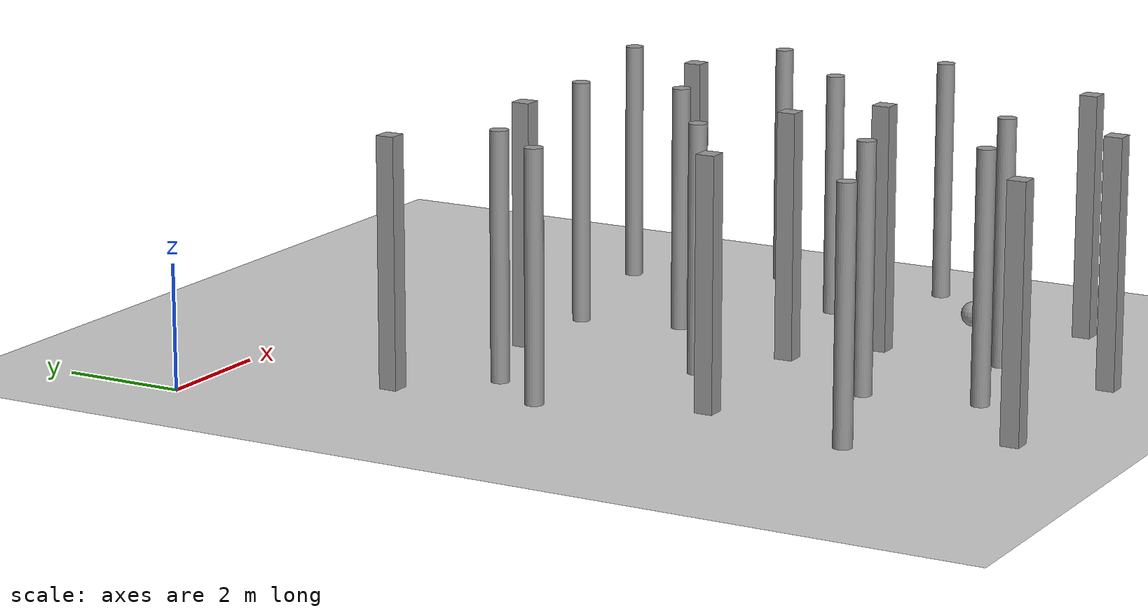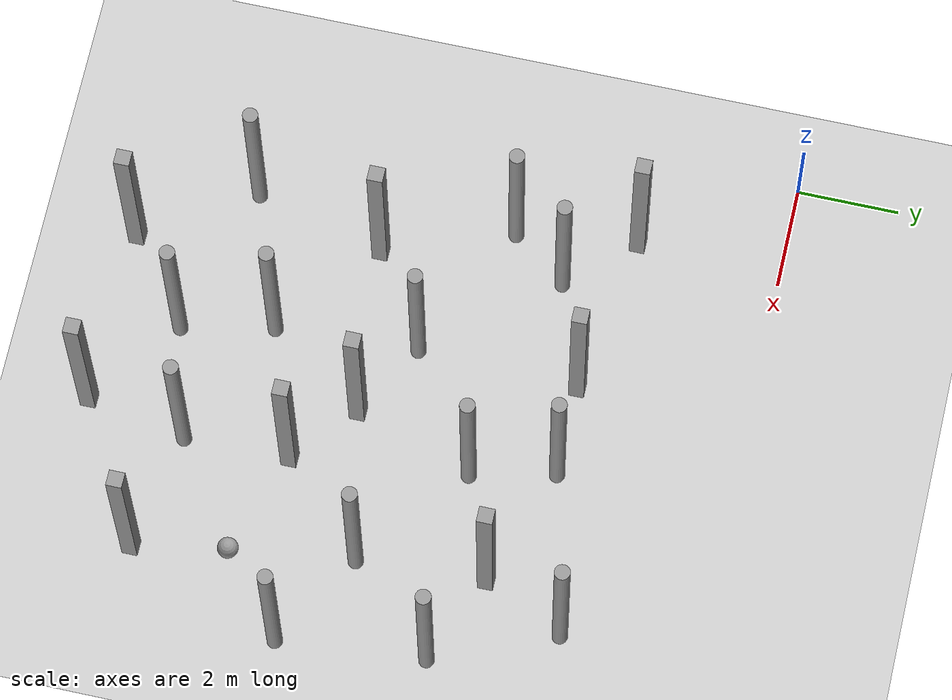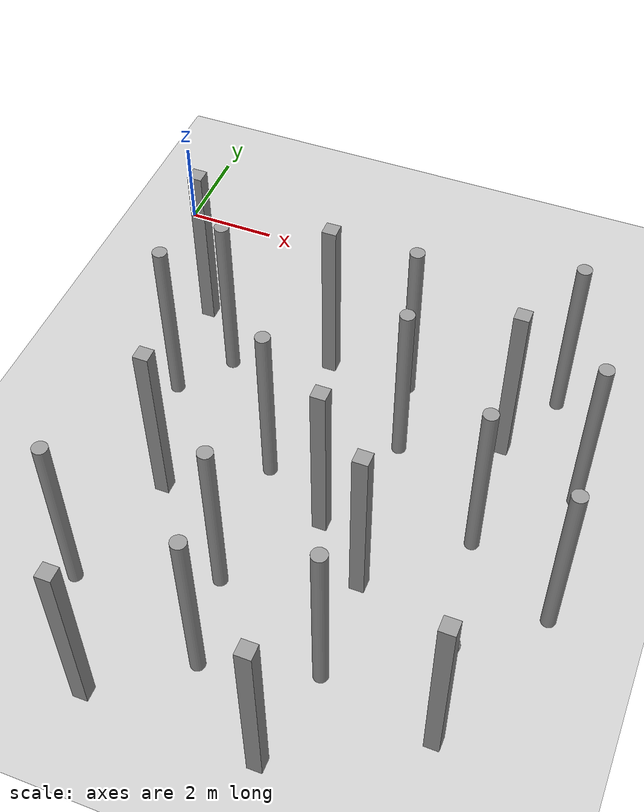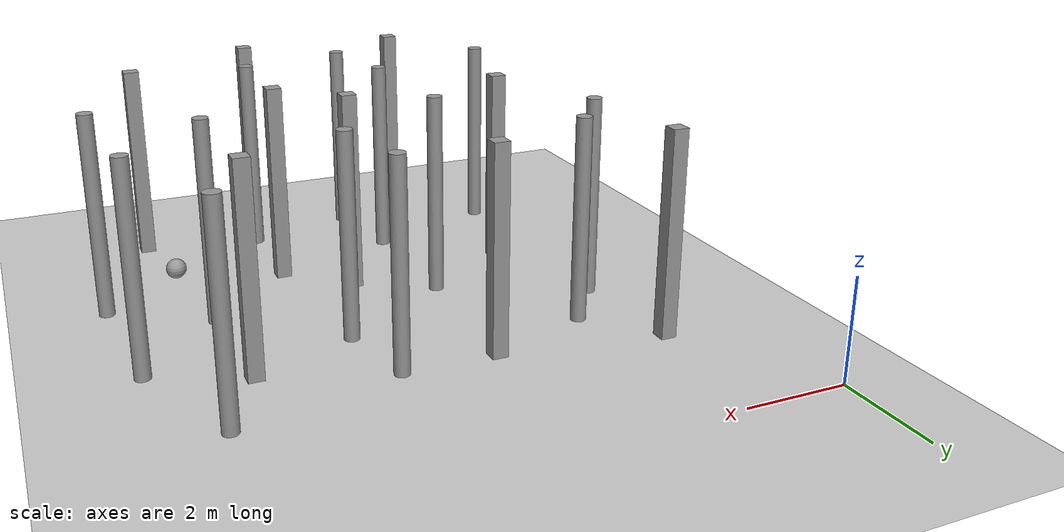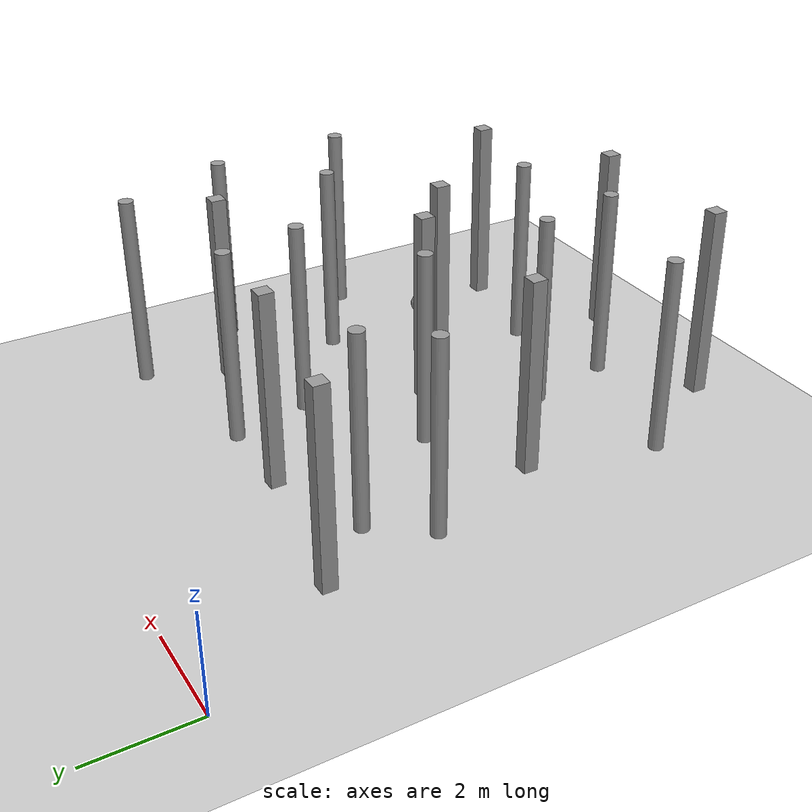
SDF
<sdf version="1.6">
 <world name="default">
  <model name="ground_plane">
   <static>1</static>
   <link name="link">
    <collision name="collision">
     <geometry><plane><normal>0 0 1</normal><size>100 100</size></plane></geometry>
    </collision>
    <visual name="visual">
     <cast_shadows>0</cast_shadows>
     <geometry><plane><normal>0 0 1</normal><size>100 100</size></plane></geometry>
     <material>
      <script><uri>file://media/materials/scripts/gazebo.material</uri><name>Gazebo/Gray</name></script>
     </material>
    </visual>
   </link>
  </model>
  <model name="unit_sphere">
   <link name="link">
    <inertial>
     <mass>1</mass>
     <inertia><ixx>0.1</ixx><ixy>0</ixy><ixz>0</ixz><iyy>0.1</iyy><iyz>0</iyz><izz>0.1</izz></inertia>
    </inertial>
    <gravity>0</gravity>
    <visual name="visual">
     <geometry><sphere><radius>0.203941</radius></sphere></geometry>
     <material>
      <script><name>Gazebo/Grey</name><uri>file://media/materials/scripts/gazebo.material</uri></script>
      <shader type="pixel"><normal_map>__default__</normal_map></shader>
     </material>
    </visual>
    <collision name="collision">
     <geometry><sphere><radius>0.203941</radius></sphere></geometry>
     <surface>
      <friction>
       <ode><mu>1</mu><mu2>1</mu2><fdir1>0 0 0</fdir1><slip1>0</slip1><slip2>0</slip2></ode>
       <torsional>
        <coefficient>1</coefficient>
        <patch_radius>0</patch_radius>
        <surface_radius>0</surface_radius>
        <use_patch_radius>1</use_patch_radius>
        <ode><slip>0</slip></ode>
       </torsional>
      </friction>
      <bounce><restitution_coefficient>0</restitution_coefficient><threshold>1e+06</threshold></bounce>
      <contact>
       <collide_without_contact>0</collide_without_contact>
       <collide_without_contact_bitmask>1</collide_without_contact_bitmask>
       <collide_bitmask>1</collide_bitmask>
       <ode>
        <soft_cfm>0</soft_cfm>
        <soft_erp>0.2</soft_erp>
        <kp>1e+13</kp>
        <kd>1</kd>
        <max_vel>0.01</max_vel>
        <min_depth>0</min_depth>
       </ode>
       <bullet>
        <split_impulse>1</split_impulse>
        <split_impulse_penetration_threshold>-0.01</split_impulse_penetration_threshold>
        <soft_cfm>0</soft_cfm>
        <soft_erp>0.2</soft_erp>
        <kp>1e+13</kp>
        <kd>1</kd>
       </bullet>
      </contact>
     </surface>
    </collision>
   </link>
   <static>0</static>
   <pose>9.54607 -9.14462 0.203941 0 -0 0</pose>
  </model>
  <model name="unit_box_clone_2">
   <link name="link">
    <inertial>
     <mass>1000</mass>
     <inertia><ixx>166.667</ixx><ixy>0</ixy><ixz>0</ixz><iyy>166.667</iyy><iyz>0</iyz><izz>166.667</izz></inertia>
    </inertial>
    <visual name="visual">
     <geometry><box><size>0.3 0.3 4</size></box></geometry>
     <material>
      <script><name>Gazebo/Grey</name><uri>file://media/materials/scripts/gazebo.material</uri></script>
      <shader type="vertex"><normal_map>__default__</normal_map></shader>
      <ambient>0.3 0.3 0.3 1</ambient>
      <diffuse>0.7 0.7 0.7 1</diffuse>
      <specular>0.01 0.01 0.01 1</specular>
      <emissive>0 0 0 1</emissive>
     </material>
    </visual>
    <collision name="collision">
     <geometry><box><size>0.3 0.3 4</size></box></geometry>
     <surface>
      <friction>
       <ode><mu>1</mu><mu2>1</mu2><fdir1>0 0 0</fdir1><slip1>0</slip1><slip2>0</slip2></ode>
       <torsional>
        <coefficient>1</coefficient>
        <patch_radius>0</patch_radius>
        <surface_radius>0</surface_radius>
        <use_patch_radius>1</use_patch_radius>
        <ode><slip>0</slip></ode>
       </torsional>
      </friction>
      <bounce><restitution_coefficient>0</restitution_coefficient><threshold>1e+06</threshold></bounce>
      <contact>
       <collide_without_contact>0</collide_without_contact>
       <collide_without_contact_bitmask>1</collide_without_contact_bitmask>
       <collide_bitmask>1</collide_bitmask>
       <ode>
        <soft_cfm>0</soft_cfm>
        <soft_erp>0.2</soft_erp>
        <kp>1e+13</kp>
        <kd>1</kd>
        <max_vel>0.01</max_vel>
        <min_depth>0</min_depth>
       </ode>
       <bullet>
        <split_impulse>1</split_impulse>
        <split_impulse_penetration_threshold>-0.01</split_impulse_penetration_threshold>
        <soft_cfm>0</soft_cfm>
        <soft_erp>0.2</soft_erp>
        <kp>1e+13</kp>
        <kd>1</kd>
       </bullet>
      </contact>
     </surface>
    </collision>
   </link>
   <static>0</static>
   <pose>4.92523 -3.34791 2 -1e-06 -7e-06 0.005354</pose>
  </model>
  <model name="unit_box_clone_7">
   <link name="link">
    <inertial>
     <mass>1000</mass>
     <inertia><ixx>166.667</ixx><ixy>0</ixy><ixz>0</ixz><iyy>166.667</iyy><iyz>0</iyz><izz>166.667</izz></inertia>
    </inertial>
    <visual name="visual">
     <geometry><box><size>0.3 0.3 4</size></box></geometry>
     <material>
      <script><name>Gazebo/Grey</name><uri>file://media/materials/scripts/gazebo.material</uri></script>
      <shader type="vertex"><normal_map>__default__</normal_map></shader>
      <ambient>0.3 0.3 0.3 1</ambient>
      <diffuse>0.7 0.7 0.7 1</diffuse>
      <specular>0.01 0.01 0.01 1</specular>
      <emissive>0 0 0 1</emissive>
     </material>
    </visual>
    <collision name="collision">
     <geometry><box><size>0.3 0.3 4</size></box></geometry>
     <surface>
      <friction>
       <ode><mu>1</mu><mu2>1</mu2><fdir1>0 0 0</fdir1><slip1>0</slip1><slip2>0</slip2></ode>
       <torsional>
        <coefficient>1</coefficient>
        <patch_radius>0</patch_radius>
        <surface_radius>0</surface_radius>
        <use_patch_radius>1</use_patch_radius>
        <ode><slip>0</slip></ode>
       </torsional>
      </friction>
      <bounce><restitution_coefficient>0</restitution_coefficient><threshold>1e+06</threshold></bounce>
      <contact>
       <collide_without_contact>0</collide_without_contact>
       <collide_without_contact_bitmask>1</collide_without_contact_bitmask>
       <collide_bitmask>1</collide_bitmask>
       <ode>
        <soft_cfm>0</soft_cfm>
        <soft_erp>0.2</soft_erp>
        <kp>1e+13</kp>
        <kd>1</kd>
        <max_vel>0.01</max_vel>
        <min_depth>0</min_depth>
       </ode>
       <bullet>
        <split_impulse>1</split_impulse>
        <split_impulse_penetration_threshold>-0.01</split_impulse_penetration_threshold>
        <soft_cfm>0</soft_cfm>
        <soft_erp>0.2</soft_erp>
        <kp>1e+13</kp>
        <kd>1</kd>
       </bullet>
      </contact>
     </surface>
    </collision>
   </link>
   <static>0</static>
   <pose>9.8605 -10.963 2 5e-06 -1.8e-05 -0.005667</pose>
  </model>
  <model name="unit_cylinder_clone_0">
   <link name="link">
    <inertial>
     <mass>1000</mass>
     <inertia><ixx>145.833</ixx><ixy>0</ixy><ixz>0</ixz><iyy>145.833</iyy><iyz>0</iyz><izz>125</izz></inertia>
    </inertial>
    <visual name="visual">
     <geometry><cylinder><radius>0.15</radius><length>4</length></cylinder></geometry>
     <material>
      <script><name>Gazebo/Grey</name><uri>file://media/materials/scripts/gazebo.material</uri></script>
      <shader type="vertex"><normal_map>__default__</normal_map></shader>
      <ambient>0.3 0.3 0.3 1</ambient>
      <diffuse>0.7 0.7 0.7 1</diffuse>
      <specular>0.01 0.01 0.01 1</specular>
      <emissive>0 0 0 1</emissive>
     </material>
    </visual>
    <collision name="collision">
     <geometry><cylinder><radius>0.15</radius><length>4</length></cylinder></geometry>
     <surface>
      <friction>
       <ode><mu>1</mu><mu2>1</mu2><fdir1>0 0 0</fdir1><slip1>0</slip1><slip2>0</slip2></ode>
       <torsional>
        <coefficient>1</coefficient>
        <patch_radius>0</patch_radius>
        <surface_radius>0</surface_radius>
        <use_patch_radius>1</use_patch_radius>
        <ode><slip>0</slip></ode>
       </torsional>
      </friction>
      <bounce><restitution_coefficient>0</restitution_coefficient><threshold>1e+06</threshold></bounce>
      <contact>
       <collide_without_contact>0</collide_without_contact>
       <collide_without_contact_bitmask>1</collide_without_contact_bitmask>
       <collide_bitmask>1</collide_bitmask>
       <ode>
        <soft_cfm>0</soft_cfm>
        <soft_erp>0.2</soft_erp>
        <kp>1e+13</kp>
        <kd>1</kd>
        <max_vel>0.01</max_vel>
        <min_depth>0</min_depth>
       </ode>
       <bullet>
        <split_impulse>1</split_impulse>
        <split_impulse_penetration_threshold>-0.01</split_impulse_penetration_threshold>
        <soft_cfm>0</soft_cfm>
        <soft_erp>0.2</soft_erp>
        <kp>1e+13</kp>
        <kd>1</kd>
       </bullet>
      </contact>
     </surface>
    </collision>
   </link>
   <static>0</static>
   <pose>6.72153 -3.36401 1.99998 -1e-06 1e-06 -0.161446</pose>
  </model>
  <model name="unit_cylinder_clone_1">
   <link name="link">
    <inertial>
     <mass>1000</mass>
     <inertia><ixx>145.833</ixx><ixy>0</ixy><ixz>0</ixz><iyy>145.833</iyy><iyz>0</iyz><izz>125</izz></inertia>
    </inertial>
    <visual name="visual">
     <geometry><cylinder><radius>0.15</radius><length>4</length></cylinder></geometry>
     <material>
      <script><name>Gazebo/Grey</name><uri>file://media/materials/scripts/gazebo.material</uri></script>
      <shader type="vertex"><normal_map>__default__</normal_map></shader>
      <ambient>0.3 0.3 0.3 1</ambient>
      <diffuse>0.7 0.7 0.7 1</diffuse>
      <specular>0.01 0.01 0.01 1</specular>
      <emissive>0 0 0 1</emissive>
     </material>
    </visual>
    <collision name="collision">
     <geometry><cylinder><radius>0.15</radius><length>4</length></cylinder></geometry>
     <surface>
      <friction>
       <ode><mu>1</mu><mu2>1</mu2><fdir1>0 0 0</fdir1><slip1>0</slip1><slip2>0</slip2></ode>
       <torsional>
        <coefficient>1</coefficient>
        <patch_radius>0</patch_radius>
        <surface_radius>0</surface_radius>
        <use_patch_radius>1</use_patch_radius>
        <ode><slip>0</slip></ode>
       </torsional>
      </friction>
      <bounce><restitution_coefficient>0</restitution_coefficient><threshold>1e+06</threshold></bounce>
      <contact>
       <collide_without_contact>0</collide_without_contact>
       <collide_without_contact_bitmask>1</collide_without_contact_bitmask>
       <collide_bitmask>1</collide_bitmask>
       <ode>
        <soft_cfm>0</soft_cfm>
        <soft_erp>0.2</soft_erp>
        <kp>1e+13</kp>
        <kd>1</kd>
        <max_vel>0.01</max_vel>
        <min_depth>0</min_depth>
       </ode>
       <bullet>
        <split_impulse>1</split_impulse>
        <split_impulse_penetration_threshold>-0.01</split_impulse_penetration_threshold>
        <soft_cfm>0</soft_cfm>
        <soft_erp>0.2</soft_erp>
        <kp>1e+13</kp>
        <kd>1</kd>
       </bullet>
      </contact>
     </surface>
    </collision>
   </link>
   <static>0</static>
   <pose>2.06797 -5.17657 1.99998 -2e-06 -0 -0.149269</pose>
  </model>
  <model name="unit_cylinder_clone_2">
   <link name="link">
    <inertial>
     <mass>1000</mass>
     <inertia><ixx>145.833</ixx><ixy>0</ixy><ixz>0</ixz><iyy>145.833</iyy><iyz>0</iyz><izz>125</izz></inertia>
    </inertial>
    <visual name="visual">
     <geometry><cylinder><radius>0.15</radius><length>4</length></cylinder></geometry>
     <material>
      <script><name>Gazebo/Grey</name><uri>file://media/materials/scripts/gazebo.material</uri></script>
      <shader type="vertex"><normal_map>__default__</normal_map></shader>
      <ambient>0.3 0.3 0.3 1</ambient>
      <diffuse>0.7 0.7 0.7 1</diffuse>
      <specular>0.01 0.01 0.01 1</specular>
      <emissive>0 0 0 1</emissive>
     </material>
    </visual>
    <collision name="collision">
     <geometry><cylinder><radius>0.15</radius><length>4</length></cylinder></geometry>
     <surface>
      <friction>
       <ode><mu>1</mu><mu2>1</mu2><fdir1>0 0 0</fdir1><slip1>0</slip1><slip2>0</slip2></ode>
       <torsional>
        <coefficient>1</coefficient>
        <patch_radius>0</patch_radius>
        <surface_radius>0</surface_radius>
        <use_patch_radius>1</use_patch_radius>
        <ode><slip>0</slip></ode>
       </torsional>
      </friction>
      <bounce><restitution_coefficient>0</restitution_coefficient><threshold>1e+06</threshold></bounce>
      <contact>
       <collide_without_contact>0</collide_without_contact>
       <collide_without_contact_bitmask>1</collide_without_contact_bitmask>
       <collide_bitmask>1</collide_bitmask>
       <ode>
        <soft_cfm>0</soft_cfm>
        <soft_erp>0.2</soft_erp>
        <kp>1e+13</kp>
        <kd>1</kd>
        <max_vel>0.01</max_vel>
        <min_depth>0</min_depth>
       </ode>
       <bullet>
        <split_impulse>1</split_impulse>
        <split_impulse_penetration_threshold>-0.01</split_impulse_penetration_threshold>
        <soft_cfm>0</soft_cfm>
        <soft_erp>0.2</soft_erp>
        <kp>1e+13</kp>
        <kd>1</kd>
       </bullet>
      </contact>
     </surface>
    </collision>
   </link>
   <static>0</static>
   <pose>4.97545 -9.30368 1.99998 -2e-06 -0 -0.167694</pose>
  </model>
  <model name="unit_cylinder_clone_0_clone">
   <link name="link">
    <inertial>
     <mass>1000</mass>
     <inertia><ixx>145.833</ixx><ixy>0</ixy><ixz>0</ixz><iyy>145.833</iyy><iyz>0</iyz><izz>125</izz></inertia>
    </inertial>
    <visual name="visual">
     <geometry><cylinder><radius>0.15</radius><length>4</length></cylinder></geometry>
     <material>
      <script><name>Gazebo/Grey</name><uri>file://media/materials/scripts/gazebo.material</uri></script>
      <shader type="vertex"><normal_map>__default__</normal_map></shader>
      <ambient>0.3 0.3 0.3 1</ambient>
      <diffuse>0.7 0.7 0.7 1</diffuse>
      <specular>0.01 0.01 0.01 1</specular>
      <emissive>0 0 0 1</emissive>
     </material>
    </visual>
    <collision name="collision">
     <geometry><cylinder><radius>0.15</radius><length>4</length></cylinder></geometry>
     <surface>
      <friction>
       <ode><mu>1</mu><mu2>1</mu2><fdir1>0 0 0</fdir1><slip1>0</slip1><slip2>0</slip2></ode>
       <torsional>
        <coefficient>1</coefficient>
        <patch_radius>0</patch_radius>
        <surface_radius>0</surface_radius>
        <use_patch_radius>1</use_patch_radius>
        <ode><slip>0</slip></ode>
       </torsional>
      </friction>
      <bounce><restitution_coefficient>0</restitution_coefficient><threshold>1e+06</threshold></bounce>
      <contact>
       <collide_without_contact>0</collide_without_contact>
       <collide_without_contact_bitmask>1</collide_without_contact_bitmask>
       <collide_bitmask>1</collide_bitmask>
       <ode>
        <soft_cfm>0</soft_cfm>
        <soft_erp>0.2</soft_erp>
        <kp>1e+13</kp>
        <kd>1</kd>
        <max_vel>0.01</max_vel>
        <min_depth>0</min_depth>
       </ode>
       <bullet>
        <split_impulse>1</split_impulse>
        <split_impulse_penetration_threshold>-0.01</split_impulse_penetration_threshold>
        <soft_cfm>0</soft_cfm>
        <soft_erp>0.2</soft_erp>
        <kp>1e+13</kp>
        <kd>1</kd>
       </bullet>
      </contact>
     </surface>
    </collision>
   </link>
   <static>0</static>
   <pose>10.8478 -4.98998 1.99998 -1e-06 1e-06 -0.145154</pose>
  </model>
  <model name="unit_cylinder_clone_1_clone_9">
   <link name="link">
    <inertial>
     <mass>1000</mass>
     <inertia><ixx>145.833</ixx><ixy>0</ixy><ixz>0</ixz><iyy>145.833</iyy><iyz>0</iyz><izz>125</izz></inertia>
    </inertial>
    <visual name="visual">
     <geometry><cylinder><radius>0.15</radius><length>4</length></cylinder></geometry>
     <material>
      <script><name>Gazebo/Grey</name><uri>file://media/materials/scripts/gazebo.material</uri></script>
      <shader type="vertex"><normal_map>__default__</normal_map></shader>
      <ambient>0.3 0.3 0.3 1</ambient>
      <diffuse>0.7 0.7 0.7 1</diffuse>
      <specular>0.01 0.01 0.01 1</specular>
      <emissive>0 0 0 1</emissive>
     </material>
    </visual>
    <collision name="collision">
     <geometry><cylinder><radius>0.15</radius><length>4</length></cylinder></geometry>
     <surface>
      <friction>
       <ode><mu>1</mu><mu2>1</mu2><fdir1>0 0 0</fdir1><slip1>0</slip1><slip2>0</slip2></ode>
       <torsional>
        <coefficient>1</coefficient>
        <patch_radius>0</patch_radius>
        <surface_radius>0</surface_radius>
        <use_patch_radius>1</use_patch_radius>
        <ode><slip>0</slip></ode>
       </torsional>
      </friction>
      <bounce><restitution_coefficient>0</restitution_coefficient><threshold>1e+06</threshold></bounce>
      <contact>
       <collide_without_contact>0</collide_without_contact>
       <collide_without_contact_bitmask>1</collide_without_contact_bitmask>
       <collide_bitmask>1</collide_bitmask>
       <ode>
        <soft_cfm>0</soft_cfm>
        <soft_erp>0.2</soft_erp>
        <kp>1e+13</kp>
        <kd>1</kd>
        <max_vel>0.01</max_vel>
        <min_depth>0</min_depth>
       </ode>
       <bullet>
        <split_impulse>1</split_impulse>
        <split_impulse_penetration_threshold>-0.01</split_impulse_penetration_threshold>
        <soft_cfm>0</soft_cfm>
        <soft_erp>0.2</soft_erp>
        <kp>1e+13</kp>
        <kd>1</kd>
       </bullet>
      </contact>
     </surface>
    </collision>
   </link>
   <static>0</static>
   <pose>11.0914 -7.86932 1.99995 -0.000273 2e-06 -0.785122</pose>
  </model>
  <model name="unit_cylinder_clone_1_clone_23">
   <link name="link">
    <inertial>
     <mass>1000</mass>
     <inertia><ixx>145.833</ixx><ixy>0</ixy><ixz>0</ixz><iyy>145.833</iyy><iyz>0</iyz><izz>125</izz></inertia>
    </inertial>
    <visual name="visual">
     <geometry><cylinder><radius>0.15</radius><length>4</length></cylinder></geometry>
     <material>
      <script><name>Gazebo/Grey</name><uri>file://media/materials/scripts/gazebo.material</uri></script>
      <shader type="vertex"><normal_map>__default__</normal_map></shader>
      <ambient>0.3 0.3 0.3 1</ambient>
      <diffuse>0.7 0.7 0.7 1</diffuse>
      <specular>0.01 0.01 0.01 1</specular>
      <emissive>0 0 0 1</emissive>
     </material>
    </visual>
    <collision name="collision">
     <geometry><cylinder><radius>0.15</radius><length>4</length></cylinder></geometry>
     <surface>
      <friction>
       <ode><mu>1</mu><mu2>1</mu2><fdir1>0 0 0</fdir1><slip1>0</slip1><slip2>0</slip2></ode>
       <torsional>
        <coefficient>1</coefficient>
        <patch_radius>0</patch_radius>
        <surface_radius>0</surface_radius>
        <use_patch_radius>1</use_patch_radius>
        <ode><slip>0</slip></ode>
       </torsional>
      </friction>
      <bounce><restitution_coefficient>0</restitution_coefficient><threshold>1e+06</threshold></bounce>
      <contact>
       <collide_without_contact>0</collide_without_contact>
       <collide_without_contact_bitmask>1</collide_without_contact_bitmask>
       <collide_bitmask>1</collide_bitmask>
       <ode>
        <soft_cfm>0</soft_cfm>
        <soft_erp>0.2</soft_erp>
        <kp>1e+13</kp>
        <kd>1</kd>
        <max_vel>0.01</max_vel>
        <min_depth>0</min_depth>
       </ode>
       <bullet>
        <split_impulse>1</split_impulse>
        <split_impulse_penetration_threshold>-0.01</split_impulse_penetration_threshold>
        <soft_cfm>0</soft_cfm>
        <soft_erp>0.2</soft_erp>
        <kp>1e+13</kp>
        <kd>1</kd>
       </bullet>
      </contact>
     </surface>
    </collision>
   </link>
   <static>0</static>
   <pose>7.09414 -5.00762 1.99998 -2e-06 -0 -0.323582</pose>
  </model>
  <model name="unit_cylinder_clone_1_clone_24">
   <link name="link">
    <inertial>
     <mass>1000</mass>
     <inertia><ixx>145.833</ixx><ixy>0</ixy><ixz>0</ixz><iyy>145.833</iyy><iyz>0</iyz><izz>125</izz></inertia>
    </inertial>
    <visual name="visual">
     <geometry><cylinder><radius>0.15</radius><length>4</length></cylinder></geometry>
     <material>
      <script><name>Gazebo/Grey</name><uri>file://media/materials/scripts/gazebo.material</uri></script>
      <shader type="vertex"><normal_map>__default__</normal_map></shader>
      <ambient>0.3 0.3 0.3 1</ambient>
      <diffuse>0.7 0.7 0.7 1</diffuse>
      <specular>0.01 0.01 0.01 1</specular>
      <emissive>0 0 0 1</emissive>
     </material>
    </visual>
    <collision name="collision">
     <geometry><cylinder><radius>0.15</radius><length>4</length></cylinder></geometry>
     <surface>
      <friction>
       <ode><mu>1</mu><mu2>1</mu2><fdir1>0 0 0</fdir1><slip1>0</slip1><slip2>0</slip2></ode>
       <torsional>
        <coefficient>1</coefficient>
        <patch_radius>0</patch_radius>
        <surface_radius>0</surface_radius>
        <use_patch_radius>1</use_patch_radius>
        <ode><slip>0</slip></ode>
       </torsional>
      </friction>
      <bounce><restitution_coefficient>0</restitution_coefficient><threshold>1e+06</threshold></bounce>
      <contact>
       <collide_without_contact>0</collide_without_contact>
       <collide_without_contact_bitmask>1</collide_without_contact_bitmask>
       <collide_bitmask>1</collide_bitmask>
       <ode>
        <soft_cfm>0</soft_cfm>
        <soft_erp>0.2</soft_erp>
        <kp>1e+13</kp>
        <kd>1</kd>
        <max_vel>0.01</max_vel>
        <min_depth>0</min_depth>
       </ode>
       <bullet>
        <split_impulse>1</split_impulse>
        <split_impulse_penetration_threshold>-0.01</split_impulse_penetration_threshold>
        <soft_cfm>0</soft_cfm>
        <soft_erp>0.2</soft_erp>
        <kp>1e+13</kp>
        <kd>1</kd>
       </bullet>
      </contact>
     </surface>
    </collision>
   </link>
   <static>0</static>
   <pose>9.22788 -6.732 1.99995 -0.000273 2e-06 -0.788119</pose>
  </model>
  <model name="unit_cylinder_clone_1_clone_29">
   <link name="link">
    <inertial>
     <mass>1000</mass>
     <inertia><ixx>145.833</ixx><ixy>0</ixy><ixz>0</ixz><iyy>145.833</iyy><iyz>0</iyz><izz>125</izz></inertia>
    </inertial>
    <visual name="visual">
     <geometry><cylinder><radius>0.15</radius><length>4</length></cylinder></geometry>
     <material>
      <script><name>Gazebo/Grey</name><uri>file://media/materials/scripts/gazebo.material</uri></script>
      <shader type="vertex"><normal_map>__default__</normal_map></shader>
      <ambient>0.3 0.3 0.3 1</ambient>
      <diffuse>0.7 0.7 0.7 1</diffuse>
      <specular>0.01 0.01 0.01 1</specular>
      <emissive>0 0 0 1</emissive>
     </material>
    </visual>
    <collision name="collision">
     <geometry><cylinder><radius>0.15</radius><length>4</length></cylinder></geometry>
     <surface>
      <friction>
       <ode><mu>1</mu><mu2>1</mu2><fdir1>0 0 0</fdir1><slip1>0</slip1><slip2>0</slip2></ode>
       <torsional>
        <coefficient>1</coefficient>
        <patch_radius>0</patch_radius>
        <surface_radius>0</surface_radius>
        <use_patch_radius>1</use_patch_radius>
        <ode><slip>0</slip></ode>
       </torsional>
      </friction>
      <bounce><restitution_coefficient>0</restitution_coefficient><threshold>1e+06</threshold></bounce>
      <contact>
       <collide_without_contact>0</collide_without_contact>
       <collide_without_contact_bitmask>1</collide_without_contact_bitmask>
       <collide_bitmask>1</collide_bitmask>
       <ode>
        <soft_cfm>0</soft_cfm>
        <soft_erp>0.2</soft_erp>
        <kp>1e+13</kp>
        <kd>1</kd>
        <max_vel>0.01</max_vel>
        <min_depth>0</min_depth>
       </ode>
       <bullet>
        <split_impulse>1</split_impulse>
        <split_impulse_penetration_threshold>-0.01</split_impulse_penetration_threshold>
        <soft_cfm>0</soft_cfm>
        <soft_erp>0.2</soft_erp>
        <kp>1e+13</kp>
        <kd>1</kd>
       </bullet>
      </contact>
     </surface>
    </collision>
   </link>
   <static>0</static>
   <pose>9.85103 -2.63333 1.99995 -0.000273 2e-06 -0.784957</pose>
  </model>
  <model name="unit_cylinder_clone_1_clone_7_clone_4">
   <link name="link">
    <inertial>
     <mass>1000</mass>
     <inertia><ixx>145.833</ixx><ixy>0</ixy><ixz>0</ixz><iyy>145.833</iyy><iyz>0</iyz><izz>125</izz></inertia>
    </inertial>
    <visual name="visual">
     <geometry><cylinder><radius>0.15</radius><length>4</length></cylinder></geometry>
     <material>
      <script><name>Gazebo/Grey</name><uri>file://media/materials/scripts/gazebo.material</uri></script>
      <shader type="vertex"><normal_map>__default__</normal_map></shader>
      <ambient>0.3 0.3 0.3 1</ambient>
      <diffuse>0.7 0.7 0.7 1</diffuse>
      <specular>0.01 0.01 0.01 1</specular>
      <emissive>0 0 0 1</emissive>
     </material>
    </visual>
    <collision name="collision">
     <geometry><cylinder><radius>0.15</radius><length>4</length></cylinder></geometry>
     <surface>
      <friction>
       <ode><mu>1</mu><mu2>1</mu2><fdir1>0 0 0</fdir1><slip1>0</slip1><slip2>0</slip2></ode>
       <torsional>
        <coefficient>1</coefficient>
        <patch_radius>0</patch_radius>
        <surface_radius>0</surface_radius>
        <use_patch_radius>1</use_patch_radius>
        <ode><slip>0</slip></ode>
       </torsional>
      </friction>
      <bounce><restitution_coefficient>0</restitution_coefficient><threshold>1e+06</threshold></bounce>
      <contact>
       <collide_without_contact>0</collide_without_contact>
       <collide_without_contact_bitmask>1</collide_without_contact_bitmask>
       <collide_bitmask>1</collide_bitmask>
       <ode>
        <soft_cfm>0</soft_cfm>
        <soft_erp>0.2</soft_erp>
        <kp>1e+13</kp>
        <kd>1</kd>
        <max_vel>0.01</max_vel>
        <min_depth>0</min_depth>
       </ode>
       <bullet>
        <split_impulse>1</split_impulse>
        <split_impulse_penetration_threshold>-0.01</split_impulse_penetration_threshold>
        <soft_cfm>0</soft_cfm>
        <soft_erp>0.2</soft_erp>
        <kp>1e+13</kp>
        <kd>1</kd>
       </bullet>
      </contact>
     </surface>
    </collision>
   </link>
   <static>0</static>
   <pose>2.32944 -10.2408 1.99995 -0.000273 2e-06 -0.784968</pose>
  </model>
  <model name="unit_cylinder_clone_1_clone_7_clone_9">
   <link name="link">
    <inertial>
     <mass>1000</mass>
     <inertia><ixx>145.833</ixx><ixy>0</ixy><ixz>0</ixz><iyy>145.833</iyy><iyz>0</iyz><izz>125</izz></inertia>
    </inertial>
    <visual name="visual">
     <geometry><cylinder><radius>0.15</radius><length>4</length></cylinder></geometry>
     <material>
      <script><name>Gazebo/Grey</name><uri>file://media/materials/scripts/gazebo.material</uri></script>
      <shader type="vertex"><normal_map>__default__</normal_map></shader>
      <ambient>0.3 0.3 0.3 1</ambient>
      <diffuse>0.7 0.7 0.7 1</diffuse>
      <specular>0.01 0.01 0.01 1</specular>
      <emissive>0 0 0 1</emissive>
     </material>
    </visual>
    <collision name="collision">
     <geometry><cylinder><radius>0.15</radius><length>4</length></cylinder></geometry>
     <surface>
      <friction>
       <ode><mu>1</mu><mu2>1</mu2><fdir1>0 0 0</fdir1><slip1>0</slip1><slip2>0</slip2></ode>
       <torsional>
        <coefficient>1</coefficient>
        <patch_radius>0</patch_radius>
        <surface_radius>0</surface_radius>
        <use_patch_radius>1</use_patch_radius>
        <ode><slip>0</slip></ode>
       </torsional>
      </friction>
      <bounce><restitution_coefficient>0</restitution_coefficient><threshold>1e+06</threshold></bounce>
      <contact>
       <collide_without_contact>0</collide_without_contact>
       <collide_without_contact_bitmask>1</collide_without_contact_bitmask>
       <collide_bitmask>1</collide_bitmask>
       <ode>
        <soft_cfm>0</soft_cfm>
        <soft_erp>0.2</soft_erp>
        <kp>1e+13</kp>
        <kd>1</kd>
        <max_vel>0.01</max_vel>
        <min_depth>0</min_depth>
       </ode>
       <bullet>
        <split_impulse>1</split_impulse>
        <split_impulse_penetration_threshold>-0.01</split_impulse_penetration_threshold>
        <soft_cfm>0</soft_cfm>
        <soft_erp>0.2</soft_erp>
        <kp>1e+13</kp>
        <kd>1</kd>
       </bullet>
      </contact>
     </surface>
    </collision>
   </link>
   <static>0</static>
   <pose>2.88643 -4.0864 1.99995 -0.000273 4e-06 -0.780124</pose>
  </model>
  <model name="unit_cylinder_clone_clone">
   <link name="link">
    <inertial>
     <mass>1000</mass>
     <inertia><ixx>145.833</ixx><ixy>0</ixy><ixz>0</ixz><iyy>145.833</iyy><iyz>0</iyz><izz>125</izz></inertia>
    </inertial>
    <visual name="visual">
     <geometry><cylinder><radius>0.15</radius><length>4</length></cylinder></geometry>
     <material>
      <script><name>Gazebo/Grey</name><uri>file://media/materials/scripts/gazebo.material</uri></script>
      <shader type="vertex"><normal_map>__default__</normal_map></shader>
      <ambient>0.3 0.3 0.3 1</ambient>
      <diffuse>0.7 0.7 0.7 1</diffuse>
      <specular>0.01 0.01 0.01 1</specular>
      <emissive>0 0 0 1</emissive>
     </material>
    </visual>
    <collision name="collision">
     <geometry><cylinder><radius>0.15</radius><length>4</length></cylinder></geometry>
     <surface>
      <friction>
       <ode><mu>1</mu><mu2>1</mu2><fdir1>0 0 0</fdir1><slip1>0</slip1><slip2>0</slip2></ode>
       <torsional>
        <coefficient>1</coefficient>
        <patch_radius>0</patch_radius>
        <surface_radius>0</surface_radius>
        <use_patch_radius>1</use_patch_radius>
        <ode><slip>0</slip></ode>
       </torsional>
      </friction>
      <bounce><restitution_coefficient>0</restitution_coefficient><threshold>1e+06</threshold></bounce>
      <contact>
       <collide_without_contact>0</collide_without_contact>
       <collide_without_contact_bitmask>1</collide_without_contact_bitmask>
       <collide_bitmask>1</collide_bitmask>
       <ode>
        <soft_cfm>0</soft_cfm>
        <soft_erp>0.2</soft_erp>
        <kp>1e+13</kp>
        <kd>1</kd>
        <max_vel>0.01</max_vel>
        <min_depth>0</min_depth>
       </ode>
       <bullet>
        <split_impulse>1</split_impulse>
        <split_impulse_penetration_threshold>-0.01</split_impulse_penetration_threshold>
        <soft_cfm>0</soft_cfm>
        <soft_erp>0.2</soft_erp>
        <kp>1e+13</kp>
        <kd>1</kd>
       </bullet>
      </contact>
     </surface>
    </collision>
   </link>
   <static>0</static>
   <pose>5.35031 -11.105 1.99998 -1e-06 1e-06 -0.158126</pose>
  </model>
  <model name="unit_cylinder_clone_clone_0">
   <link name="link">
    <inertial>
     <mass>1000</mass>
     <inertia><ixx>145.833</ixx><ixy>0</ixy><ixz>0</ixz><iyy>145.833</iyy><iyz>0</iyz><izz>125</izz></inertia>
    </inertial>
    <visual name="visual">
     <geometry><cylinder><radius>0.15</radius><length>4</length></cylinder></geometry>
     <material>
      <script><name>Gazebo/Grey</name><uri>file://media/materials/scripts/gazebo.material</uri></script>
      <shader type="vertex"><normal_map>__default__</normal_map></shader>
      <ambient>0.3 0.3 0.3 1</ambient>
      <diffuse>0.7 0.7 0.7 1</diffuse>
      <specular>0.01 0.01 0.01 1</specular>
      <emissive>0 0 0 1</emissive>
     </material>
    </visual>
    <collision name="collision">
     <geometry><cylinder><radius>0.15</radius><length>4</length></cylinder></geometry>
     <surface>
      <friction>
       <ode><mu>1</mu><mu2>1</mu2><fdir1>0 0 0</fdir1><slip1>0</slip1><slip2>0</slip2></ode>
       <torsional>
        <coefficient>1</coefficient>
        <patch_radius>0</patch_radius>
        <surface_radius>0</surface_radius>
        <use_patch_radius>1</use_patch_radius>
        <ode><slip>0</slip></ode>
       </torsional>
      </friction>
      <bounce><restitution_coefficient>0</restitution_coefficient><threshold>1e+06</threshold></bounce>
      <contact>
       <collide_without_contact>0</collide_without_contact>
       <collide_without_contact_bitmask>1</collide_without_contact_bitmask>
       <collide_bitmask>1</collide_bitmask>
       <ode>
        <soft_cfm>0</soft_cfm>
        <soft_erp>0.2</soft_erp>
        <kp>1e+13</kp>
        <kd>1</kd>
        <max_vel>0.01</max_vel>
        <min_depth>0</min_depth>
       </ode>
       <bullet>
        <split_impulse>1</split_impulse>
        <split_impulse_penetration_threshold>-0.01</split_impulse_penetration_threshold>
        <soft_cfm>0</soft_cfm>
        <soft_erp>0.2</soft_erp>
        <kp>1e+13</kp>
        <kd>1</kd>
       </bullet>
      </contact>
     </surface>
    </collision>
   </link>
   <static>0</static>
   <pose>7.53521 -10.4999 1.99998 -2e-06 1e-06 -0.157755</pose>
  </model>
  <model name="unit_cylinder_clone_clone_1">
   <link name="link">
    <inertial>
     <mass>1000</mass>
     <inertia><ixx>145.833</ixx><ixy>0</ixy><ixz>0</ixz><iyy>145.833</iyy><iyz>0</iyz><izz>125</izz></inertia>
    </inertial>
    <visual name="visual">
     <geometry><cylinder><radius>0.15</radius><length>4</length></cylinder></geometry>
     <material>
      <script><name>Gazebo/Grey</name><uri>file://media/materials/scripts/gazebo.material</uri></script>
      <shader type="vertex"><normal_map>__default__</normal_map></shader>
      <ambient>0.3 0.3 0.3 1</ambient>
      <diffuse>0.7 0.7 0.7 1</diffuse>
      <specular>0.01 0.01 0.01 1</specular>
      <emissive>0 0 0 1</emissive>
     </material>
    </visual>
    <collision name="collision">
     <geometry><cylinder><radius>0.15</radius><length>4</length></cylinder></geometry>
     <surface>
      <friction>
       <ode><mu>1</mu><mu2>1</mu2><fdir1>0 0 0</fdir1><slip1>0</slip1><slip2>0</slip2></ode>
       <torsional>
        <coefficient>1</coefficient>
        <patch_radius>0</patch_radius>
        <surface_radius>0</surface_radius>
        <use_patch_radius>1</use_patch_radius>
        <ode><slip>0</slip></ode>
       </torsional>
      </friction>
      <bounce><restitution_coefficient>0</restitution_coefficient><threshold>1e+06</threshold></bounce>
      <contact>
       <collide_without_contact>0</collide_without_contact>
       <collide_without_contact_bitmask>1</collide_without_contact_bitmask>
       <collide_bitmask>1</collide_bitmask>
       <ode>
        <soft_cfm>0</soft_cfm>
        <soft_erp>0.2</soft_erp>
        <kp>1e+13</kp>
        <kd>1</kd>
        <max_vel>0.01</max_vel>
        <min_depth>0</min_depth>
       </ode>
       <bullet>
        <split_impulse>1</split_impulse>
        <split_impulse_penetration_threshold>-0.01</split_impulse_penetration_threshold>
        <soft_cfm>0</soft_cfm>
        <soft_erp>0.2</soft_erp>
        <kp>1e+13</kp>
        <kd>1</kd>
       </bullet>
      </contact>
     </surface>
    </collision>
   </link>
   <static>0</static>
   <pose>4.81924 -6.50849 1.99998 -1e-06 -1e-06 -0.169069</pose>
  </model>
  <model name="unit_box_clone_26_clone">
   <link name="link">
    <inertial>
     <mass>1000</mass>
     <inertia><ixx>166.667</ixx><ixy>0</ixy><ixz>0</ixz><iyy>166.667</iyy><iyz>0</iyz><izz>166.667</izz></inertia>
    </inertial>
    <visual name="visual">
     <geometry><box><size>0.3 0.3 4</size></box></geometry>
     <material>
      <script><name>Gazebo/Grey</name><uri>file://media/materials/scripts/gazebo.material</uri></script>
      <shader type="vertex"><normal_map>__default__</normal_map></shader>
      <ambient>0.3 0.3 0.3 1</ambient>
      <diffuse>0.7 0.7 0.7 1</diffuse>
      <specular>0.01 0.01 0.01 1</specular>
      <emissive>0 0 0 1</emissive>
     </material>
    </visual>
    <collision name="collision">
     <geometry><box><size>0.3 0.3 4</size></box></geometry>
     <surface>
      <friction>
       <ode><mu>1</mu><mu2>1</mu2><fdir1>0 0 0</fdir1><slip1>0</slip1><slip2>0</slip2></ode>
       <torsional>
        <coefficient>1</coefficient>
        <patch_radius>0</patch_radius>
        <surface_radius>0</surface_radius>
        <use_patch_radius>1</use_patch_radius>
        <ode><slip>0</slip></ode>
       </torsional>
      </friction>
      <bounce><restitution_coefficient>0</restitution_coefficient><threshold>1e+06</threshold></bounce>
      <contact>
       <collide_without_contact>0</collide_without_contact>
       <collide_without_contact_bitmask>1</collide_without_contact_bitmask>
       <collide_bitmask>1</collide_bitmask>
       <ode>
        <soft_cfm>0</soft_cfm>
        <soft_erp>0.2</soft_erp>
        <kp>1e+13</kp>
        <kd>1</kd>
        <max_vel>0.01</max_vel>
        <min_depth>0</min_depth>
       </ode>
       <bullet>
        <split_impulse>1</split_impulse>
        <split_impulse_penetration_threshold>-0.01</split_impulse_penetration_threshold>
        <soft_cfm>0</soft_cfm>
        <soft_erp>0.2</soft_erp>
        <kp>1e+13</kp>
        <kd>1</kd>
       </bullet>
      </contact>
     </surface>
    </collision>
   </link>
   <static>0</static>
   <pose>6.29746 -7.35654 2 2e-06 3e-06 0.001035</pose>
  </model>
  <model name="unit_box_clone_26_clone_0">
   <link name="link">
    <inertial>
     <mass>1000</mass>
     <inertia><ixx>166.667</ixx><ixy>0</ixy><ixz>0</ixz><iyy>166.667</iyy><iyz>0</iyz><izz>166.667</izz></inertia>
    </inertial>
    <visual name="visual">
     <geometry><box><size>0.3 0.3 4</size></box></geometry>
     <material>
      <script><name>Gazebo/Grey</name><uri>file://media/materials/scripts/gazebo.material</uri></script>
      <shader type="vertex"><normal_map>__default__</normal_map></shader>
      <ambient>0.3 0.3 0.3 1</ambient>
      <diffuse>0.7 0.7 0.7 1</diffuse>
      <specular>0.01 0.01 0.01 1</specular>
      <emissive>0 0 0 1</emissive>
     </material>
    </visual>
    <collision name="collision">
     <geometry><box><size>0.3 0.3 4</size></box></geometry>
     <surface>
      <friction>
       <ode><mu>1</mu><mu2>1</mu2><fdir1>0 0 0</fdir1><slip1>0</slip1><slip2>0</slip2></ode>
       <torsional>
        <coefficient>1</coefficient>
        <patch_radius>0</patch_radius>
        <surface_radius>0</surface_radius>
        <use_patch_radius>1</use_patch_radius>
        <ode><slip>0</slip></ode>
       </torsional>
      </friction>
      <bounce><restitution_coefficient>0</restitution_coefficient><threshold>1e+06</threshold></bounce>
      <contact>
       <collide_without_contact>0</collide_without_contact>
       <collide_without_contact_bitmask>1</collide_without_contact_bitmask>
       <collide_bitmask>1</collide_bitmask>
       <ode>
        <soft_cfm>0</soft_cfm>
        <soft_erp>0.2</soft_erp>
        <kp>1e+13</kp>
        <kd>1</kd>
        <max_vel>0.01</max_vel>
        <min_depth>0</min_depth>
       </ode>
       <bullet>
        <split_impulse>1</split_impulse>
        <split_impulse_penetration_threshold>-0.01</split_impulse_penetration_threshold>
        <soft_cfm>0</soft_cfm>
        <soft_erp>0.2</soft_erp>
        <kp>1e+13</kp>
        <kd>1</kd>
       </bullet>
      </contact>
     </surface>
    </collision>
   </link>
   <static>0</static>
   <pose>2.98335 -7.66717 2 2.3e-05 -1e-06 -0.003793</pose>
  </model>
  <model name="unit_box_clone_26_clone_1">
   <link name="link">
    <inertial>
     <mass>1000</mass>
     <inertia><ixx>166.667</ixx><ixy>0</ixy><ixz>0</ixz><iyy>166.667</iyy><iyz>0</iyz><izz>166.667</izz></inertia>
    </inertial>
    <visual name="visual">
     <geometry><box><size>0.3 0.3 4</size></box></geometry>
     <material>
      <script><name>Gazebo/Grey</name><uri>file://media/materials/scripts/gazebo.material</uri></script>
      <shader type="vertex"><normal_map>__default__</normal_map></shader>
      <ambient>0.3 0.3 0.3 1</ambient>
      <diffuse>0.7 0.7 0.7 1</diffuse>
      <specular>0.01 0.01 0.01 1</specular>
      <emissive>0 0 0 1</emissive>
     </material>
    </visual>
    <collision name="collision">
     <geometry><box><size>0.3 0.3 4</size></box></geometry>
     <surface>
      <friction>
       <ode><mu>1</mu><mu2>1</mu2><fdir1>0 0 0</fdir1><slip1>0</slip1><slip2>0</slip2></ode>
       <torsional>
        <coefficient>1</coefficient>
        <patch_radius>0</patch_radius>
        <surface_radius>0</surface_radius>
        <use_patch_radius>1</use_patch_radius>
        <ode><slip>0</slip></ode>
       </torsional>
      </friction>
      <bounce><restitution_coefficient>0</restitution_coefficient><threshold>1e+06</threshold></bounce>
      <contact>
       <collide_without_contact>0</collide_without_contact>
       <collide_without_contact_bitmask>1</collide_without_contact_bitmask>
       <collide_bitmask>1</collide_bitmask>
       <ode>
        <soft_cfm>0</soft_cfm>
        <soft_erp>0.2</soft_erp>
        <kp>1e+13</kp>
        <kd>1</kd>
        <max_vel>0.01</max_vel>
        <min_depth>0</min_depth>
       </ode>
       <bullet>
        <split_impulse>1</split_impulse>
        <split_impulse_penetration_threshold>-0.01</split_impulse_penetration_threshold>
        <soft_cfm>0</soft_cfm>
        <soft_erp>0.2</soft_erp>
        <kp>1e+13</kp>
        <kd>1</kd>
       </bullet>
      </contact>
     </surface>
    </collision>
   </link>
   <static>0</static>
   <pose>1.75864 -2.82242 2.00001 3.2e-05 1.4e-05 -0.002571</pose>
  </model>
  <model name="unit_box_clone_26_clone_3">
   <link name="link">
    <inertial>
     <mass>1000</mass>
     <inertia><ixx>166.667</ixx><ixy>0</ixy><ixz>0</ixz><iyy>166.667</iyy><iyz>0</iyz><izz>166.667</izz></inertia>
    </inertial>
    <visual name="visual">
     <geometry><box><size>0.3 0.3 4</size></box></geometry>
     <material>
      <script><name>Gazebo/Grey</name><uri>file://media/materials/scripts/gazebo.material</uri></script>
      <shader type="vertex"><normal_map>__default__</normal_map></shader>
      <ambient>0.3 0.3 0.3 1</ambient>
      <diffuse>0.7 0.7 0.7 1</diffuse>
      <specular>0.01 0.01 0.01 1</specular>
      <emissive>0 0 0 1</emissive>
     </material>
    </visual>
    <collision name="collision">
     <geometry><box><size>0.3 0.3 4</size></box></geometry>
     <surface>
      <friction>
       <ode><mu>1</mu><mu2>1</mu2><fdir1>0 0 0</fdir1><slip1>0</slip1><slip2>0</slip2></ode>
       <torsional>
        <coefficient>1</coefficient>
        <patch_radius>0</patch_radius>
        <surface_radius>0</surface_radius>
        <use_patch_radius>1</use_patch_radius>
        <ode><slip>0</slip></ode>
       </torsional>
      </friction>
      <bounce><restitution_coefficient>0</restitution_coefficient><threshold>1e+06</threshold></bounce>
      <contact>
       <collide_without_contact>0</collide_without_contact>
       <collide_without_contact_bitmask>1</collide_without_contact_bitmask>
       <collide_bitmask>1</collide_bitmask>
       <ode>
        <soft_cfm>0</soft_cfm>
        <soft_erp>0.2</soft_erp>
        <kp>1e+13</kp>
        <kd>1</kd>
        <max_vel>0.01</max_vel>
        <min_depth>0</min_depth>
       </ode>
       <bullet>
        <split_impulse>1</split_impulse>
        <split_impulse_penetration_threshold>-0.01</split_impulse_penetration_threshold>
        <soft_cfm>0</soft_cfm>
        <soft_erp>0.2</soft_erp>
        <kp>1e+13</kp>
        <kd>1</kd>
       </bullet>
      </contact>
     </surface>
    </collision>
   </link>
   <static>0</static>
   <pose>9.09115 -4.2202 2.00001 -1e-05 3e-05 -0.002721</pose>
  </model>
  <model name="unit_box_clone_26_clone_7">
   <link name="link">
    <inertial>
     <mass>1000</mass>
     <inertia><ixx>166.667</ixx><ixy>0</ixy><ixz>0</ixz><iyy>166.667</iyy><iyz>0</iyz><izz>166.667</izz></inertia>
    </inertial>
    <visual name="visual">
     <geometry><box><size>0.3 0.3 4</size></box></geometry>
     <material>
      <script><name>Gazebo/Grey</name><uri>file://media/materials/scripts/gazebo.material</uri></script>
      <shader type="vertex"><normal_map>__default__</normal_map></shader>
      <ambient>0.3 0.3 0.3 1</ambient>
      <diffuse>0.7 0.7 0.7 1</diffuse>
      <specular>0.01 0.01 0.01 1</specular>
      <emissive>0 0 0 1</emissive>
     </material>
    </visual>
    <collision name="collision">
     <geometry><box><size>0.3 0.3 4</size></box></geometry>
     <surface>
      <friction>
       <ode><mu>1</mu><mu2>1</mu2><fdir1>0 0 0</fdir1><slip1>0</slip1><slip2>0</slip2></ode>
       <torsional>
        <coefficient>1</coefficient>
        <patch_radius>0</patch_radius>
        <surface_radius>0</surface_radius>
        <use_patch_radius>1</use_patch_radius>
        <ode><slip>0</slip></ode>
       </torsional>
      </friction>
      <bounce><restitution_coefficient>0</restitution_coefficient><threshold>1e+06</threshold></bounce>
      <contact>
       <collide_without_contact>0</collide_without_contact>
       <collide_without_contact_bitmask>1</collide_without_contact_bitmask>
       <collide_bitmask>1</collide_bitmask>
       <ode>
        <soft_cfm>0</soft_cfm>
        <soft_erp>0.2</soft_erp>
        <kp>1e+13</kp>
        <kd>1</kd>
        <max_vel>0.01</max_vel>
        <min_depth>0</min_depth>
       </ode>
       <bullet>
        <split_impulse>1</split_impulse>
        <split_impulse_penetration_threshold>-0.01</split_impulse_penetration_threshold>
        <soft_cfm>0</soft_cfm>
        <soft_erp>0.2</soft_erp>
        <kp>1e+13</kp>
        <kd>1</kd>
       </bullet>
      </contact>
     </surface>
    </collision>
   </link>
   <static>0</static>
   <pose>7.49438 -8.4237 2 -1e-06 -4e-06 -0.000581</pose>
  </model>
  <model name="unit_box_clone_26_clone_11">
   <link name="link">
    <inertial>
     <mass>1000</mass>
     <inertia><ixx>166.667</ixx><ixy>0</ixy><ixz>0</ixz><iyy>166.667</iyy><iyz>0</iyz><izz>166.667</izz></inertia>
    </inertial>
    <visual name="visual">
     <geometry><box><size>0.3 0.3 4</size></box></geometry>
     <material>
      <script><name>Gazebo/Grey</name><uri>file://media/materials/scripts/gazebo.material</uri></script>
      <shader type="vertex"><normal_map>__default__</normal_map></shader>
      <ambient>0.3 0.3 0.3 1</ambient>
      <diffuse>0.7 0.7 0.7 1</diffuse>
      <specular>0.01 0.01 0.01 1</specular>
      <emissive>0 0 0 1</emissive>
     </material>
    </visual>
    <collision name="collision">
     <geometry><box><size>0.3 0.3 4</size></box></geometry>
     <surface>
      <friction>
       <ode><mu>1</mu><mu2>1</mu2><fdir1>0 0 0</fdir1><slip1>0</slip1><slip2>0</slip2></ode>
       <torsional>
        <coefficient>1</coefficient>
        <patch_radius>0</patch_radius>
        <surface_radius>0</surface_radius>
        <use_patch_radius>1</use_patch_radius>
        <ode><slip>0</slip></ode>
       </torsional>
      </friction>
      <bounce><restitution_coefficient>0</restitution_coefficient><threshold>1e+06</threshold></bounce>
      <contact>
       <collide_without_contact>0</collide_without_contact>
       <collide_without_contact_bitmask>1</collide_without_contact_bitmask>
       <collide_bitmask>1</collide_bitmask>
       <ode>
        <soft_cfm>0</soft_cfm>
        <soft_erp>0.2</soft_erp>
        <kp>1e+13</kp>
        <kd>1</kd>
        <max_vel>0.01</max_vel>
        <min_depth>0</min_depth>
       </ode>
       <bullet>
        <split_impulse>1</split_impulse>
        <split_impulse_penetration_threshold>-0.01</split_impulse_penetration_threshold>
        <soft_cfm>0</soft_cfm>
        <soft_erp>0.2</soft_erp>
        <kp>1e+13</kp>
        <kd>1</kd>
       </bullet>
      </contact>
     </surface>
    </collision>
   </link>
   <static>0</static>
   <pose>3.67506 -12.3631 2.00001 5e-06 -3.5e-05 0.001907</pose>
  </model>
  <model name="unit_box_clone_26_clone_12">
   <link name="link">
    <inertial>
     <mass>1000</mass>
     <inertia><ixx>166.667</ixx><ixy>0</ixy><ixz>0</ixz><iyy>166.667</iyy><iyz>0</iyz><izz>166.667</izz></inertia>
    </inertial>
    <visual name="visual">
     <geometry><box><size>0.3 0.3 4</size></box></geometry>
     <material>
      <script><name>Gazebo/Grey</name><uri>file://media/materials/scripts/gazebo.material</uri></script>
      <shader type="vertex"><normal_map>__default__</normal_map></shader>
      <ambient>0.3 0.3 0.3 1</ambient>
      <diffuse>0.7 0.7 0.7 1</diffuse>
      <specular>0.01 0.01 0.01 1</specular>
      <emissive>0 0 0 1</emissive>
     </material>
    </visual>
    <collision name="collision">
     <geometry><box><size>0.3 0.3 4</size></box></geometry>
     <surface>
      <friction>
       <ode><mu>1</mu><mu2>1</mu2><fdir1>0 0 0</fdir1><slip1>0</slip1><slip2>0</slip2></ode>
       <torsional>
        <coefficient>1</coefficient>
        <patch_radius>0</patch_radius>
        <surface_radius>0</surface_radius>
        <use_patch_radius>1</use_patch_radius>
        <ode><slip>0</slip></ode>
       </torsional>
      </friction>
      <bounce><restitution_coefficient>0</restitution_coefficient><threshold>1e+06</threshold></bounce>
      <contact>
       <collide_without_contact>0</collide_without_contact>
       <collide_without_contact_bitmask>1</collide_without_contact_bitmask>
       <collide_bitmask>1</collide_bitmask>
       <ode>
        <soft_cfm>0</soft_cfm>
        <soft_erp>0.2</soft_erp>
        <kp>1e+13</kp>
        <kd>1</kd>
        <max_vel>0.01</max_vel>
        <min_depth>0</min_depth>
       </ode>
       <bullet>
        <split_impulse>1</split_impulse>
        <split_impulse_penetration_threshold>-0.01</split_impulse_penetration_threshold>
        <soft_cfm>0</soft_cfm>
        <soft_erp>0.2</soft_erp>
        <kp>1e+13</kp>
        <kd>1</kd>
       </bullet>
      </contact>
     </surface>
    </collision>
   </link>
   <static>0</static>
   <pose>7.1419 -12.4657 2 0 -1e-06 -0.000103</pose>
  </model>
 </world>
</sdf>
